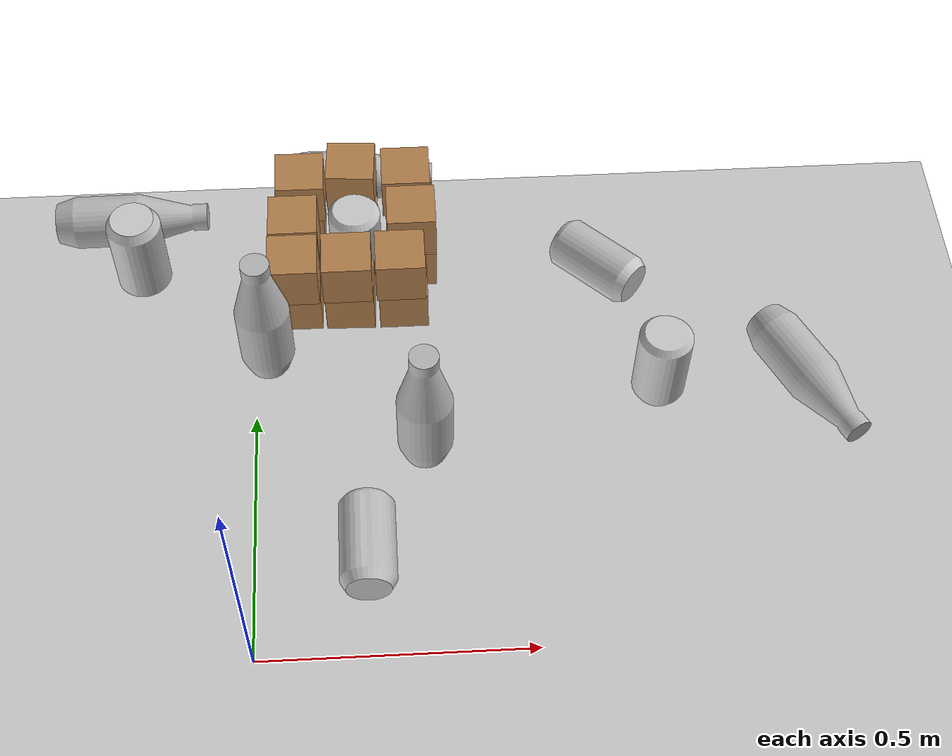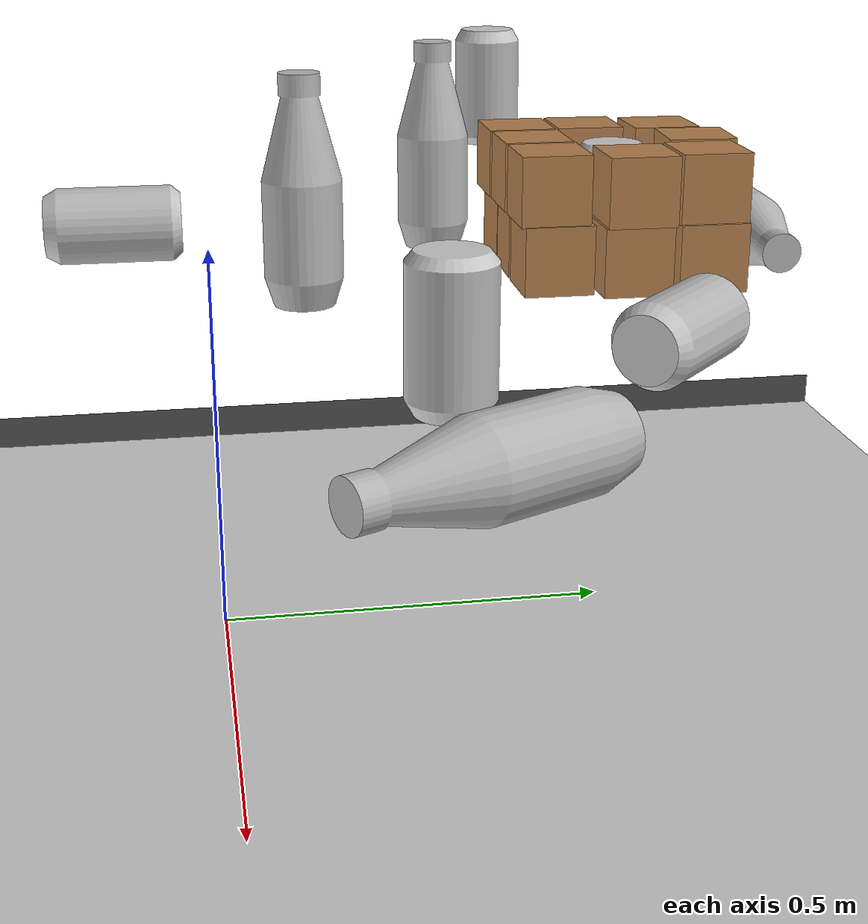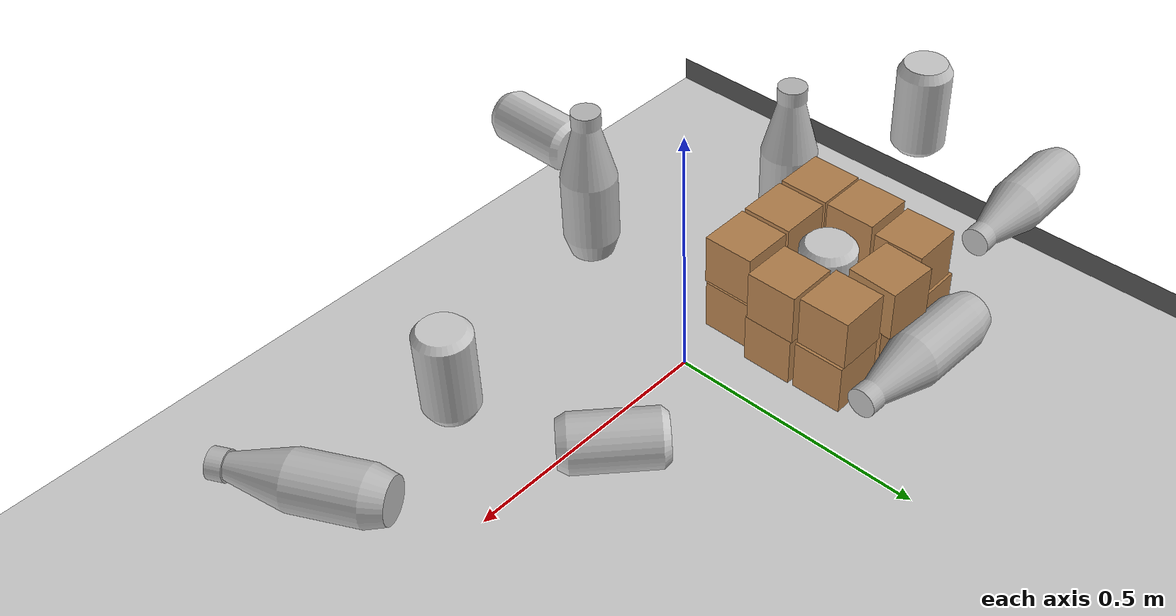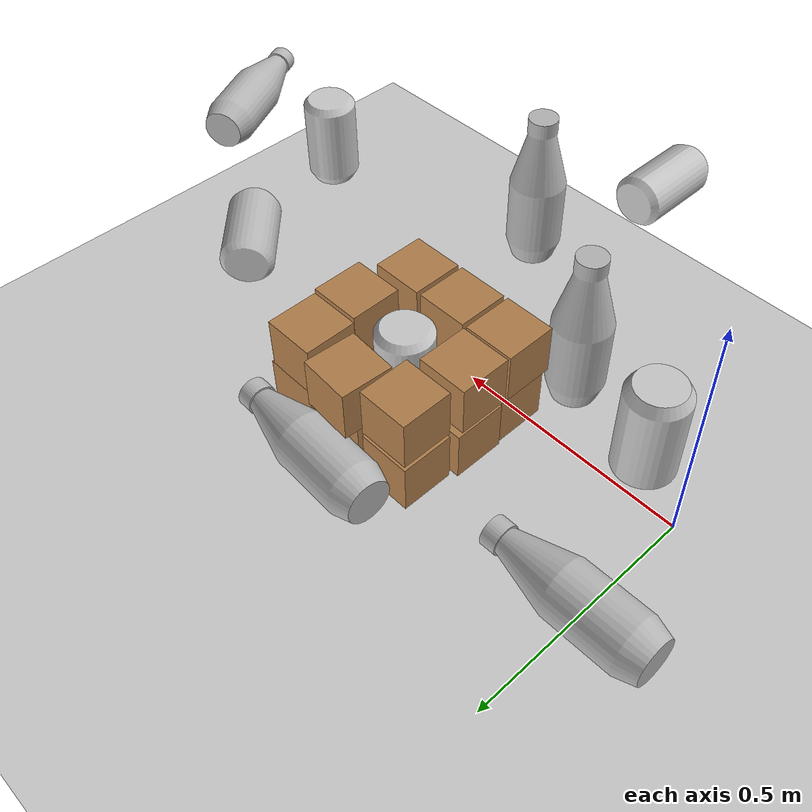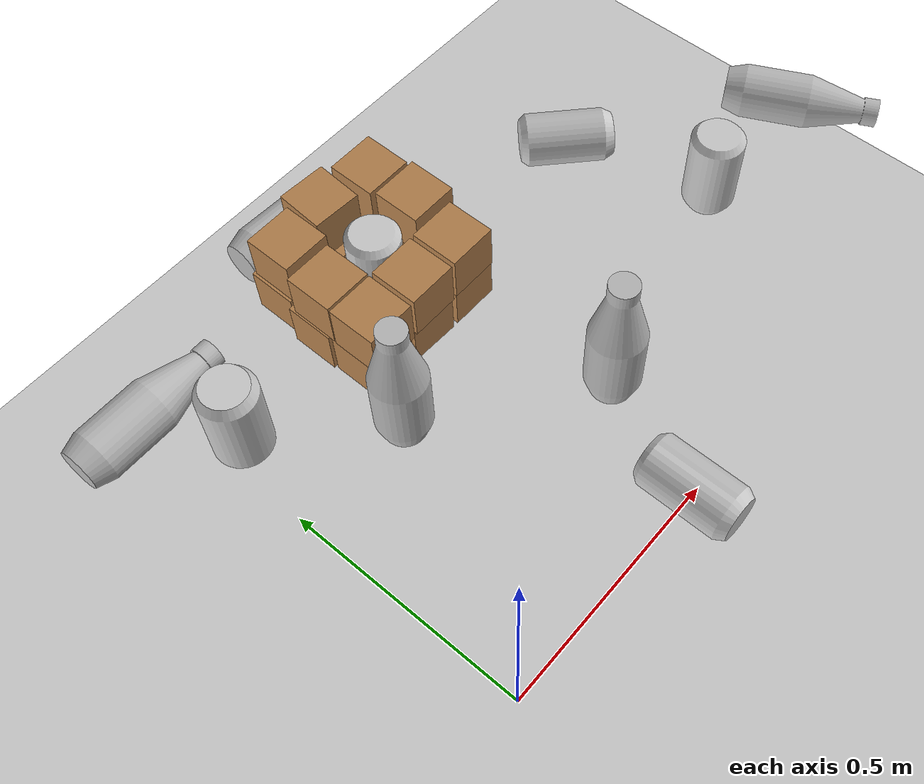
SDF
<sdf version="1.6">
 <world name="default">
  <model name="ground_plane">
   <static>1</static>
   <link name="link">
    <collision name="collision">
     <geometry><plane><normal>0 0 1</normal><size>100 100</size></plane></geometry>
     <surface><friction><ode><mu>100</mu><mu2>50</mu2></ode></friction></surface>
    </collision>
    <visual name="visual">
     <cast_shadows>0</cast_shadows>
     <geometry><plane><normal>0 0 1</normal><size>100 100</size></plane></geometry>
     <material>
      <script><uri>file://media/materials/scripts/gazebo.material</uri><name>Gazebo/Grey</name></script>
     </material>
    </visual>
   </link>
  </model>
  <model name="asphalt_plane">
   <static>1</static>
   <link name="link">
    <collision name="collision"><geometry><box><size>20 20 0.1</size></box></geometry></collision>
    <visual name="visual">
     <cast_shadows>0</cast_shadows>
     <geometry><box><size>20 20 0.1</size></box></geometry>
     <material>
      <script>
       <uri>model://asphalt_plane/materials/scripts</uri>
       <uri>model://asphalt_plane/materials/textures</uri>
       <name>vrc/asphalt</name>
      </script>
     </material>
    </visual>
   </link>
   <pose>-86.5622 -4.74054 0 0 -0 0</pose>
  </model>
  <model name="Green Can">
   <static>0</static>
   <link name="link">
    <inertial>
     <mass>0.3</mass>
     <inertia>
      <ixx>0.00055575</ixx>
      <ixy>0</ixy>
      <ixz>0</ixz>
      <iyy>0.00055575</iyy>
      <iyz>0</iyz>
      <izz>0.0001755</izz>
     </inertia>
    </inertial>
    <collision name="collision">
     <geometry><mesh><uri>model://greenCan/meshes/canGreen.dae</uri><scale>0.04 0.04 0.04</scale></mesh></geometry>
     <surface>
      <friction><ode><mu>3</mu><mu2>3</mu2></ode></friction>
      <contact><ode><kp>1e+07</kp><kd>1</kd><min_depth>0.001</min_depth><max_vel>0.5</max_vel></ode></contact>
     </surface>
    </collision>
    <visual name="visual">
     <geometry><mesh><uri>model://greenCan/meshes/canGreen.dae</uri><scale>0.04 0.04 0.04</scale></mesh></geometry>
    </visual>
   </link>
   <pose>-0.106804 0.363716 0.674668 0.002462 -0.003683 1.34015</pose>
  </model>
  <model name="Red Bottle">
   <static>0</static>
   <link name="link">
    <inertial>
     <mass>0.3</mass>
     <inertia>
      <ixx>0.00055575</ixx>
      <ixy>0</ixy>
      <ixz>0</ixz>
      <iyy>0.00055575</iyy>
      <iyz>0</iyz>
      <izz>0.0001755</izz>
     </inertia>
    </inertial>
    <collision name="collision">
     <geometry>
      <mesh><uri>model://redBottle/meshes/bottleRedBlue.dae</uri><scale>0.041 0.041 0.041</scale></mesh>
     </geometry>
     <surface>
      <friction><ode><mu>3</mu><mu2>3</mu2></ode></friction>
      <contact><ode><kp>1e+07</kp><kd>1</kd><min_depth>0.001</min_depth><max_vel>0.5</max_vel></ode></contact>
     </surface>
    </collision>
    <visual name="visual">
     <geometry>
      <mesh><uri>model://redBottle/meshes/bottleRedBlue.dae</uri><scale>0.041 0.041 0.041</scale></mesh>
     </geometry>
    </visual>
   </link>
   <pose>0.221411 0.600409 0.555976 1.57087 -0.421233 1.53192</pose>
  </model>
  <model name="Red Can">
   <static>0</static>
   <link name="link">
    <inertial>
     <mass>0.3</mass>
     <inertia>
      <ixx>0.00055575</ixx>
      <ixy>0</ixy>
      <ixz>0</ixz>
      <iyy>0.00055575</iyy>
      <iyz>0</iyz>
      <izz>0.0001755</izz>
     </inertia>
    </inertial>
    <collision name="collision">
     <geometry><mesh><uri>model://redCan/meshes/canRed.dae</uri><scale>0.04 0.04 0.04</scale></mesh></geometry>
     <surface>
      <friction><ode><mu>3</mu><mu2>3</mu2></ode></friction>
      <contact><ode><kp>1e+07</kp><kd>1</kd><min_depth>0.001</min_depth><max_vel>0.5</max_vel></ode></contact>
     </surface>
    </collision>
    <visual name="visual">
     <geometry><mesh><uri>model://redCan/meshes/canRed.dae</uri><scale>0.04 0.04 0.04</scale></mesh></geometry>
    </visual>
   </link>
   <pose>0.592503 0.403142 0.554807 -1.57079 0.098163 -2.32733</pose>
  </model>
  <model name="Red Can_clone">
   <static>0</static>
   <link name="link">
    <inertial>
     <mass>0.3</mass>
     <inertia>
      <ixx>0.00055575</ixx>
      <ixy>0</ixy>
      <ixz>0</ixz>
      <iyy>0.00055575</iyy>
      <iyz>0</iyz>
      <izz>0.0001755</izz>
     </inertia>
    </inertial>
    <collision name="collision">
     <geometry><mesh><uri>model://redCan/meshes/canRed.dae</uri><scale>0.04 0.04 0.04</scale></mesh></geometry>
     <surface>
      <friction><ode><mu>3</mu><mu2>3</mu2></ode></friction>
      <contact><ode><kp>1e+07</kp><kd>1</kd><min_depth>0.001</min_depth><max_vel>0.5</max_vel></ode></contact>
     </surface>
    </collision>
    <visual name="visual">
     <geometry><mesh><uri>model://redCan/meshes/canRed.dae</uri><scale>0.04 0.04 0.04</scale></mesh></geometry>
    </visual>
   </link>
   <pose>0.213417 0.441408 0.585732 3.13974 -0.001346 -3.01735</pose>
  </model>
  <model name="Red Bottle_clone">
   <static>0</static>
   <link name="link">
    <inertial>
     <mass>0.3</mass>
     <inertia>
      <ixx>0.00055575</ixx>
      <ixy>0</ixy>
      <ixz>0</ixz>
      <iyy>0.00055575</iyy>
      <iyz>0</iyz>
      <izz>0.0001755</izz>
     </inertia>
    </inertial>
    <collision name="collision">
     <geometry>
      <mesh><uri>model://redBottle/meshes/bottleRedBlue.dae</uri><scale>0.041 0.041 0.041</scale></mesh>
     </geometry>
     <surface>
      <friction><ode><mu>3</mu><mu2>3</mu2></ode></friction>
      <contact><ode><kp>1e+07</kp><kd>1</kd><min_depth>0.001</min_depth><max_vel>0.5</max_vel></ode></contact>
     </surface>
    </collision>
    <visual name="visual">
     <geometry>
      <mesh><uri>model://redBottle/meshes/bottleRedBlue.dae</uri><scale>0.041 0.041 0.041</scale></mesh>
     </geometry>
    </visual>
   </link>
   <pose>0.889082 0.168505 0.555797 1.5706 -0.099076 0.459908</pose>
  </model>
  <model name="Green Can_clone">
   <static>0</static>
   <link name="link">
    <inertial>
     <mass>0.3</mass>
     <inertia>
      <ixx>0.00055575</ixx>
      <ixy>0</ixy>
      <ixz>0</ixz>
      <iyy>0.00055575</iyy>
      <iyz>0</iyz>
      <izz>0.0001755</izz>
     </inertia>
    </inertial>
    <collision name="collision">
     <geometry><mesh><uri>model://greenCan/meshes/canGreen.dae</uri><scale>0.04 0.04 0.04</scale></mesh></geometry>
     <surface>
      <friction><ode><mu>3</mu><mu2>3</mu2></ode></friction>
      <contact><ode><kp>1e+07</kp><kd>1</kd><min_depth>0.001</min_depth><max_vel>0.5</max_vel></ode></contact>
     </surface>
    </collision>
    <visual name="visual">
     <geometry><mesh><uri>model://greenCan/meshes/canGreen.dae</uri><scale>0.04 0.04 0.04</scale></mesh></geometry>
    </visual>
   </link>
   <pose>0.218312 -0.101977 0.585732 -3.14159 -1.57079 -1.57079</pose>
  </model>
  <model name="Blue Bottle_clone">
   <static>0</static>
   <link name="link">
    <inertial>
     <mass>0.3</mass>
     <inertia>
      <ixx>0.00055575</ixx>
      <ixy>0</ixy>
      <ixz>0</ixz>
      <iyy>0.00055575</iyy>
      <iyz>0</iyz>
      <izz>0.0001755</izz>
     </inertia>
    </inertial>
    <collision name="collision">
     <geometry>
      <mesh><uri>model://blueBottle/meshes/bottleBlue.dae</uri><scale>0.041 0.041 0.041</scale></mesh>
     </geometry>
     <surface>
      <friction><ode><mu>3</mu><mu2>3</mu2></ode></friction>
      <contact><ode><kp>1e+07</kp><kd>1</kd><min_depth>0.001</min_depth><max_vel>0.5</max_vel></ode></contact>
     </surface>
    </collision>
    <visual name="visual">
     <geometry>
      <mesh><uri>model://blueBottle/meshes/bottleBlue.dae</uri><scale>0.041 0.041 0.041</scale></mesh>
     </geometry>
    </visual>
   </link>
   <pose>0.073556 0.263917 0.633855 0.001639 -0.001191 0.003992</pose>
  </model>
  <model name="Yellow Can">
   <static>0</static>
   <link name="link">
    <inertial>
     <mass>0.3</mass>
     <inertia>
      <ixx>0.00055575</ixx>
      <ixy>0</ixy>
      <ixz>0</ixz>
      <iyy>0.00055575</iyy>
      <iyz>0</iyz>
      <izz>0.0001755</izz>
     </inertia>
    </inertial>
    <collision name="collision">
     <geometry>
      <mesh><uri>model://yellowCan/meshes/canYellow.dae</uri><scale>0.04 0.04 0.04</scale></mesh>
     </geometry>
     <surface>
      <friction><ode><mu>3</mu><mu2>3</mu2></ode></friction>
      <contact><ode><kp>1e+07</kp><kd>1</kd><min_depth>0.001</min_depth><max_vel>0.5</max_vel></ode></contact>
     </surface>
    </collision>
    <visual name="visual">
     <geometry>
      <mesh><uri>model://yellowCan/meshes/canYellow.dae</uri><scale>0.04 0.04 0.04</scale></mesh>
     </geometry>
    </visual>
   </link>
   <pose>0.663181 0.182102 0.585669 3.1382 -0.002786 -1.30143</pose>
  </model>
  <model name="Yellow Bottle">
   <static>0</static>
   <link name="link">
    <inertial>
     <mass>0.3</mass>
     <inertia>
      <ixx>0.00055575</ixx>
      <ixy>0</ixy>
      <ixz>0</ixz>
      <iyy>0.00055575</iyy>
      <iyz>0</iyz>
      <izz>0.0001755</izz>
     </inertia>
    </inertial>
    <collision name="collision">
     <geometry>
      <mesh><uri>model://yellowBottle/meshes/bottleYellowBlue.dae</uri><scale>0.041 0.041 0.041</scale></mesh>
     </geometry>
     <surface>
      <friction><ode><mu>3</mu><mu2>3</mu2></ode></friction>
      <contact><ode><kp>1e+07</kp><kd>1</kd><min_depth>0.001</min_depth><max_vel>0.5</max_vel></ode></contact>
     </surface>
    </collision>
    <visual name="visual">
     <geometry>
      <mesh><uri>model://yellowBottle/meshes/bottleYellowBlue.dae</uri><scale>0.041 0.041 0.041</scale></mesh>
     </geometry>
    </visual>
   </link>
   <pose>-0.142983 0.526395 0.555797 1.569 1.47165 1.57799</pose>
  </model>
  <model name="Yellow Bottle_clone_1">
   <static>0</static>
   <link name="link">
    <inertial>
     <mass>0.3</mass>
     <inertia>
      <ixx>0.00055575</ixx>
      <ixy>0</ixy>
      <ixz>0</ixz>
      <iyy>0.00055575</iyy>
      <iyz>0</iyz>
      <izz>0.0001755</izz>
     </inertia>
    </inertial>
    <collision name="collision">
     <geometry>
      <mesh><uri>model://yellowBottle/meshes/bottleYellowBlue.dae</uri><scale>0.041 0.041 0.041</scale></mesh>
     </geometry>
     <surface>
      <friction><ode><mu>3</mu><mu2>3</mu2></ode></friction>
      <contact><ode><kp>1e+07</kp><kd>1</kd><min_depth>0.001</min_depth><max_vel>0.5</max_vel></ode></contact>
     </surface>
    </collision>
    <visual name="visual">
     <geometry>
      <mesh><uri>model://yellowBottle/meshes/bottleYellowBlue.dae</uri><scale>0.041 0.041 0.041</scale></mesh>
     </geometry>
    </visual>
   </link>
   <pose>0.306442 0.090912 0.633899 0.000223 1e-06 -0.005744</pose>
  </model>
  <model name="wood_cube_7_5cm_clone_0_clone_0">
   <link name="link">
    <pose>0 0 0.0375 0 -0 0</pose>
    <inertial>
     <mass>0.2249</mass>
     <inertia>
      <ixx>0.000210844</ixx>
      <ixy>0</ixy>
      <ixz>0</ixz>
      <iyy>0.000210844</iyy>
      <iyz>0</iyz>
      <izz>0.000210844</izz>
     </inertia>
    </inertial>
    <collision name="collision">
     <geometry><box><size>0.075 0.075 0.075</size></box></geometry>
     <surface>
      <contact>
       <poissons_ratio>0.347</poissons_ratio>
       <elastic_modulus>8.8e+09</elastic_modulus>
       <ode><kp>100000</kp><kd>100</kd><max_vel>100</max_vel><min_depth>0.001</min_depth></ode>
      </contact>
      <friction>
       <torsional>
        <coefficient>1</coefficient>
        <use_patch_radius>0</use_patch_radius>
        <surface_radius>0.01</surface_radius>
       </torsional>
      </friction>
     </surface>
    </collision>
    <visual name="visual">
     <geometry><box><size>0.075 0.075 0.075</size></box></geometry>
     <material>
      <script><uri>file://media/materials/scripts/gazebo.material</uri><name>Gazebo/Wood</name></script>
     </material>
    </visual>
   </link>
   <pose>0.164585 0.361638 0.551489 1.25383 1.57077 1.22111</pose>
  </model>
  <model name="wood_cube_7_5cm_clone_0_clone_1">
   <link name="link">
    <pose>0 0 0.0375 0 -0 0</pose>
    <inertial>
     <mass>0.2249</mass>
     <inertia>
      <ixx>0.000210844</ixx>
      <ixy>0</ixy>
      <ixz>0</ixz>
      <iyy>0.000210844</iyy>
      <iyz>0</iyz>
      <izz>0.000210844</izz>
     </inertia>
    </inertial>
    <collision name="collision">
     <geometry><box><size>0.075 0.075 0.075</size></box></geometry>
     <surface>
      <contact>
       <poissons_ratio>0.347</poissons_ratio>
       <elastic_modulus>8.8e+09</elastic_modulus>
       <ode><kp>100000</kp><kd>100</kd><max_vel>100</max_vel><min_depth>0.001</min_depth></ode>
      </contact>
      <friction>
       <torsional>
        <coefficient>1</coefficient>
        <use_patch_radius>0</use_patch_radius>
        <surface_radius>0.01</surface_radius>
       </torsional>
      </friction>
     </surface>
    </collision>
    <visual name="visual">
     <geometry><box><size>0.075 0.075 0.075</size></box></geometry>
     <material>
      <script><uri>file://media/materials/scripts/gazebo.material</uri><name>Gazebo/Wood</name></script>
     </material>
    </visual>
   </link>
   <pose>0.246565 0.359124 0.551489 0.930441 1.57078 0.930501</pose>
  </model>
  <model name="wood_cube_7_5cm_clone_0_clone_2">
   <link name="link">
    <pose>0 0 0.0375 0 -0 0</pose>
    <inertial>
     <mass>0.2249</mass>
     <inertia>
      <ixx>0.000210844</ixx>
      <ixy>0</ixy>
      <ixz>0</ixz>
      <iyy>0.000210844</iyy>
      <iyz>0</iyz>
      <izz>0.000210844</izz>
     </inertia>
    </inertial>
    <collision name="collision">
     <geometry><box><size>0.075 0.075 0.075</size></box></geometry>
     <surface>
      <contact>
       <poissons_ratio>0.347</poissons_ratio>
       <elastic_modulus>8.8e+09</elastic_modulus>
       <ode><kp>100000</kp><kd>100</kd><max_vel>100</max_vel><min_depth>0.001</min_depth></ode>
      </contact>
      <friction>
       <torsional>
        <coefficient>1</coefficient>
        <use_patch_radius>0</use_patch_radius>
        <surface_radius>0.01</surface_radius>
       </torsional>
      </friction>
     </surface>
    </collision>
    <visual name="visual">
     <geometry><box><size>0.075 0.075 0.075</size></box></geometry>
     <material>
      <script><uri>file://media/materials/scripts/gazebo.material</uri><name>Gazebo/Wood</name></script>
     </material>
    </visual>
   </link>
   <pose>0.082357 0.362287 0.551487 1.4705 1.57072 1.47056</pose>
  </model>
  <model name="wood_cube_7_5cm_clone_0_clone_3">
   <link name="link">
    <pose>0 0 0.0375 0 -0 0</pose>
    <inertial>
     <mass>0.2249</mass>
     <inertia>
      <ixx>0.000210844</ixx>
      <ixy>0</ixy>
      <ixz>0</ixz>
      <iyy>0.000210844</iyy>
      <iyz>0</iyz>
      <izz>0.000210844</izz>
     </inertia>
    </inertial>
    <collision name="collision">
     <geometry><box><size>0.075 0.075 0.075</size></box></geometry>
     <surface>
      <contact>
       <poissons_ratio>0.347</poissons_ratio>
       <elastic_modulus>8.8e+09</elastic_modulus>
       <ode><kp>100000</kp><kd>100</kd><max_vel>100</max_vel><min_depth>0.001</min_depth></ode>
      </contact>
      <friction>
       <torsional>
        <coefficient>1</coefficient>
        <use_patch_radius>0</use_patch_radius>
        <surface_radius>0.01</surface_radius>
       </torsional>
      </friction>
     </surface>
    </collision>
    <visual name="visual">
     <geometry><box><size>0.075 0.075 0.075</size></box></geometry>
     <material>
      <script><uri>file://media/materials/scripts/gazebo.material</uri><name>Gazebo/Wood</name></script>
     </material>
    </visual>
   </link>
   <pose>0.079254 0.44104 0.551491 -1.65505 1.57068 -1.65497</pose>
  </model>
  <model name="wood_cube_7_5cm_clone_0_clone_4">
   <link name="link">
    <pose>0 0 0.0375 0 -0 0</pose>
    <inertial>
     <mass>0.2249</mass>
     <inertia>
      <ixx>0.000210844</ixx>
      <ixy>0</ixy>
      <ixz>0</ixz>
      <iyy>0.000210844</iyy>
      <iyz>0</iyz>
      <izz>0.000210844</izz>
     </inertia>
    </inertial>
    <collision name="collision">
     <geometry><box><size>0.075 0.075 0.075</size></box></geometry>
     <surface>
      <contact>
       <poissons_ratio>0.347</poissons_ratio>
       <elastic_modulus>8.8e+09</elastic_modulus>
       <ode><kp>100000</kp><kd>100</kd><max_vel>100</max_vel><min_depth>0.001</min_depth></ode>
      </contact>
      <friction>
       <torsional>
        <coefficient>1</coefficient>
        <use_patch_radius>0</use_patch_radius>
        <surface_radius>0.01</surface_radius>
       </torsional>
      </friction>
     </surface>
    </collision>
    <visual name="visual">
     <geometry><box><size>0.075 0.075 0.075</size></box></geometry>
     <material>
      <script><uri>file://media/materials/scripts/gazebo.material</uri><name>Gazebo/Wood</name></script>
     </material>
    </visual>
   </link>
   <pose>0.088143 0.522552 0.55149 2.41345 1.57077 2.41351</pose>
  </model>
  <model name="wood_cube_7_5cm_clone_0_clone_5">
   <link name="link">
    <pose>0 0 0.0375 0 -0 0</pose>
    <inertial>
     <mass>0.2249</mass>
     <inertia>
      <ixx>0.000210844</ixx>
      <ixy>0</ixy>
      <ixz>0</ixz>
      <iyy>0.000210844</iyy>
      <iyz>0</iyz>
      <izz>0.000210844</izz>
     </inertia>
    </inertial>
    <collision name="collision">
     <geometry><box><size>0.075 0.075 0.075</size></box></geometry>
     <surface>
      <contact>
       <poissons_ratio>0.347</poissons_ratio>
       <elastic_modulus>8.8e+09</elastic_modulus>
       <ode><kp>100000</kp><kd>100</kd><max_vel>100</max_vel><min_depth>0.001</min_depth></ode>
      </contact>
      <friction>
       <torsional>
        <coefficient>1</coefficient>
        <use_patch_radius>0</use_patch_radius>
        <surface_radius>0.01</surface_radius>
       </torsional>
      </friction>
     </surface>
    </collision>
    <visual name="visual">
     <geometry><box><size>0.075 0.075 0.075</size></box></geometry>
     <material>
      <script><uri>file://media/materials/scripts/gazebo.material</uri><name>Gazebo/Wood</name></script>
     </material>
    </visual>
   </link>
   <pose>0.263141 0.440989 0.551489 -1.71297 1.57079 -1.71291</pose>
  </model>
  <model name="wood_cube_7_5cm_clone_0_clone_6">
   <link name="link">
    <pose>0 0 0.0375 0 -0 0</pose>
    <inertial>
     <mass>0.2249</mass>
     <inertia>
      <ixx>0.000210844</ixx>
      <ixy>0</ixy>
      <ixz>0</ixz>
      <iyy>0.000210844</iyy>
      <iyz>0</iyz>
      <izz>0.000210844</izz>
     </inertia>
    </inertial>
    <collision name="collision">
     <geometry><box><size>0.075 0.075 0.075</size></box></geometry>
     <surface>
      <contact>
       <poissons_ratio>0.347</poissons_ratio>
       <elastic_modulus>8.8e+09</elastic_modulus>
       <ode><kp>100000</kp><kd>100</kd><max_vel>100</max_vel><min_depth>0.001</min_depth></ode>
      </contact>
      <friction>
       <torsional>
        <coefficient>1</coefficient>
        <use_patch_radius>0</use_patch_radius>
        <surface_radius>0.01</surface_radius>
       </torsional>
      </friction>
     </surface>
    </collision>
    <visual name="visual">
     <geometry><box><size>0.075 0.075 0.075</size></box></geometry>
     <material>
      <script><uri>file://media/materials/scripts/gazebo.material</uri><name>Gazebo/Wood</name></script>
     </material>
    </visual>
   </link>
   <pose>0.174066 0.521035 0.551489 -1.45808 1.57074 -1.458</pose>
  </model>
  <model name="wood_cube_7_5cm_clone_0_clone_7">
   <link name="link">
    <pose>0 0 0.0375 0 -0 0</pose>
    <inertial>
     <mass>0.2249</mass>
     <inertia>
      <ixx>0.000210844</ixx>
      <ixy>0</ixy>
      <ixz>0</ixz>
      <iyy>0.000210844</iyy>
      <iyz>0</iyz>
      <izz>0.000210844</izz>
     </inertia>
    </inertial>
    <collision name="collision">
     <geometry><box><size>0.075 0.075 0.075</size></box></geometry>
     <surface>
      <contact>
       <poissons_ratio>0.347</poissons_ratio>
       <elastic_modulus>8.8e+09</elastic_modulus>
       <ode><kp>100000</kp><kd>100</kd><max_vel>100</max_vel><min_depth>0.001</min_depth></ode>
      </contact>
      <friction>
       <torsional>
        <coefficient>1</coefficient>
        <use_patch_radius>0</use_patch_radius>
        <surface_radius>0.01</surface_radius>
       </torsional>
      </friction>
     </surface>
    </collision>
    <visual name="visual">
     <geometry><box><size>0.075 0.075 0.075</size></box></geometry>
     <material>
      <script><uri>file://media/materials/scripts/gazebo.material</uri><name>Gazebo/Wood</name></script>
     </material>
    </visual>
   </link>
   <pose>0.262172 0.523249 0.551488 -0.000121 1.57078 -6.1e-05</pose>
  </model>
  <model name="wood_cube_7_5cm_clone_0_clone_6_clone">
   <link name="link">
    <pose>0 0 0.0375 0 -0 0</pose>
    <inertial>
     <mass>0.2249</mass>
     <inertia>
      <ixx>0.000210844</ixx>
      <ixy>0</ixy>
      <ixz>0</ixz>
      <iyy>0.000210844</iyy>
      <iyz>0</iyz>
      <izz>0.000210844</izz>
     </inertia>
    </inertial>
    <collision name="collision">
     <geometry><box><size>0.075 0.075 0.075</size></box></geometry>
     <surface>
      <contact>
       <poissons_ratio>0.347</poissons_ratio>
       <elastic_modulus>8.8e+09</elastic_modulus>
       <ode><kp>100000</kp><kd>100</kd><max_vel>100</max_vel><min_depth>0.001</min_depth></ode>
      </contact>
      <friction>
       <torsional>
        <coefficient>1</coefficient>
        <use_patch_radius>0</use_patch_radius>
        <surface_radius>0.01</surface_radius>
       </torsional>
      </friction>
     </surface>
    </collision>
    <visual name="visual">
     <geometry><box><size>0.075 0.075 0.075</size></box></geometry>
     <material>
      <script><uri>file://media/materials/scripts/gazebo.material</uri><name>Gazebo/Wood</name></script>
     </material>
    </visual>
   </link>
   <pose>0.257758 0.523249 0.625484 -1.57078 -0 -1.57074</pose>
  </model>
  <model name="wood_cube_7_5cm_clone_0_clone_6_clone_clone">
   <link name="link">
    <pose>0 0 0.0375 0 -0 0</pose>
    <inertial>
     <mass>0.2249</mass>
     <inertia>
      <ixx>0.000210844</ixx>
      <ixy>0</ixy>
      <ixz>0</ixz>
      <iyy>0.000210844</iyy>
      <iyz>0</iyz>
      <izz>0.000210844</izz>
     </inertia>
    </inertial>
    <collision name="collision">
     <geometry><box><size>0.075 0.075 0.075</size></box></geometry>
     <surface>
      <contact>
       <poissons_ratio>0.347</poissons_ratio>
       <elastic_modulus>8.8e+09</elastic_modulus>
       <ode><kp>100000</kp><kd>100</kd><max_vel>100</max_vel><min_depth>0.001</min_depth></ode>
      </contact>
      <friction>
       <torsional>
        <coefficient>1</coefficient>
        <use_patch_radius>0</use_patch_radius>
        <surface_radius>0.01</surface_radius>
       </torsional>
      </friction>
     </surface>
    </collision>
    <visual name="visual">
     <geometry><box><size>0.075 0.075 0.075</size></box></geometry>
     <material>
      <script><uri>file://media/materials/scripts/gazebo.material</uri><name>Gazebo/Wood</name></script>
     </material>
    </visual>
   </link>
   <pose>0.172456 0.539506 0.625484 -1.57079 -7.5e-05 -1.6323</pose>
  </model>
  <model name="wood_cube_7_5cm_clone_0_clone_6_clone_clone_0">
   <link name="link">
    <pose>0 0 0.0375 0 -0 0</pose>
    <inertial>
     <mass>0.2249</mass>
     <inertia>
      <ixx>0.000210844</ixx>
      <ixy>0</ixy>
      <ixz>0</ixz>
      <iyy>0.000210844</iyy>
      <iyz>0</iyz>
      <izz>0.000210844</izz>
     </inertia>
    </inertial>
    <collision name="collision">
     <geometry><box><size>0.075 0.075 0.075</size></box></geometry>
     <surface>
      <contact>
       <poissons_ratio>0.347</poissons_ratio>
       <elastic_modulus>8.8e+09</elastic_modulus>
       <ode><kp>100000</kp><kd>100</kd><max_vel>100</max_vel><min_depth>0.001</min_depth></ode>
      </contact>
      <friction>
       <torsional>
        <coefficient>1</coefficient>
        <use_patch_radius>0</use_patch_radius>
        <surface_radius>0.01</surface_radius>
       </torsional>
      </friction>
     </surface>
    </collision>
    <visual name="visual">
     <geometry><box><size>0.075 0.075 0.075</size></box></geometry>
     <material>
      <script><uri>file://media/materials/scripts/gazebo.material</uri><name>Gazebo/Wood</name></script>
     </material>
    </visual>
   </link>
   <pose>0.092399 0.518758 0.625486 -1.57082 1.8e-05 -1.57074</pose>
  </model>
  <model name="wood_cube_7_5cm_clone_0_clone_6_clone_clone_1">
   <link name="link">
    <pose>0 0 0.0375 0 -0 0</pose>
    <inertial>
     <mass>0.2249</mass>
     <inertia>
      <ixx>0.000210844</ixx>
      <ixy>0</ixy>
      <ixz>0</ixz>
      <iyy>0.000210844</iyy>
      <iyz>0</iyz>
      <izz>0.000210844</izz>
     </inertia>
    </inertial>
    <collision name="collision">
     <geometry><box><size>0.075 0.075 0.075</size></box></geometry>
     <surface>
      <contact>
       <poissons_ratio>0.347</poissons_ratio>
       <elastic_modulus>8.8e+09</elastic_modulus>
       <ode><kp>100000</kp><kd>100</kd><max_vel>100</max_vel><min_depth>0.001</min_depth></ode>
      </contact>
      <friction>
       <torsional>
        <coefficient>1</coefficient>
        <use_patch_radius>0</use_patch_radius>
        <surface_radius>0.01</surface_radius>
       </torsional>
      </friction>
     </surface>
    </collision>
    <visual name="visual">
     <geometry><box><size>0.075 0.075 0.075</size></box></geometry>
     <material>
      <script><uri>file://media/materials/scripts/gazebo.material</uri><name>Gazebo/Wood</name></script>
     </material>
    </visual>
   </link>
   <pose>0.263502 0.443516 0.625485 -1.5708 -1.2e-05 -1.57074</pose>
  </model>
  <model name="wood_cube_7_5cm_clone_0_clone_6_clone_clone_2">
   <link name="link">
    <pose>0 0 0.0375 0 -0 0</pose>
    <inertial>
     <mass>0.2249</mass>
     <inertia>
      <ixx>0.000210844</ixx>
      <ixy>0</ixy>
      <ixz>0</ixz>
      <iyy>0.000210844</iyy>
      <iyz>0</iyz>
      <izz>0.000210844</izz>
     </inertia>
    </inertial>
    <collision name="collision">
     <geometry><box><size>0.075 0.075 0.075</size></box></geometry>
     <surface>
      <contact>
       <poissons_ratio>0.347</poissons_ratio>
       <elastic_modulus>8.8e+09</elastic_modulus>
       <ode><kp>100000</kp><kd>100</kd><max_vel>100</max_vel><min_depth>0.001</min_depth></ode>
      </contact>
      <friction>
       <torsional>
        <coefficient>1</coefficient>
        <use_patch_radius>0</use_patch_radius>
        <surface_radius>0.01</surface_radius>
       </torsional>
      </friction>
     </surface>
    </collision>
    <visual name="visual">
     <geometry><box><size>0.075 0.075 0.075</size></box></geometry>
     <material>
      <script><uri>file://media/materials/scripts/gazebo.material</uri><name>Gazebo/Wood</name></script>
     </material>
    </visual>
   </link>
   <pose>0.243429 0.354913 0.625484 -1.57078 2e-05 -1.57074</pose>
  </model>
  <model name="wood_cube_7_5cm_clone_0_clone_6_clone_clone_3">
   <link name="link">
    <pose>0 0 0.0375 0 -0 0</pose>
    <inertial>
     <mass>0.2249</mass>
     <inertia>
      <ixx>0.000210844</ixx>
      <ixy>0</ixy>
      <ixz>0</ixz>
      <iyy>0.000210844</iyy>
      <iyz>0</iyz>
      <izz>0.000210844</izz>
     </inertia>
    </inertial>
    <collision name="collision">
     <geometry><box><size>0.075 0.075 0.075</size></box></geometry>
     <surface>
      <contact>
       <poissons_ratio>0.347</poissons_ratio>
       <elastic_modulus>8.8e+09</elastic_modulus>
       <ode><kp>100000</kp><kd>100</kd><max_vel>100</max_vel><min_depth>0.001</min_depth></ode>
      </contact>
      <friction>
       <torsional>
        <coefficient>1</coefficient>
        <use_patch_radius>0</use_patch_radius>
        <surface_radius>0.01</surface_radius>
       </torsional>
      </friction>
     </surface>
    </collision>
    <visual name="visual">
     <geometry><box><size>0.075 0.075 0.075</size></box></geometry>
     <material>
      <script><uri>file://media/materials/scripts/gazebo.material</uri><name>Gazebo/Wood</name></script>
     </material>
    </visual>
   </link>
   <pose>0.162298 0.354195 0.625485 -1.57079 3e-05 -1.57077</pose>
  </model>
  <model name="wood_cube_7_5cm_clone_0_clone_6_clone_clone_4">
   <link name="link">
    <pose>0 0 0.0375 0 -0 0</pose>
    <inertial>
     <mass>0.2249</mass>
     <inertia>
      <ixx>0.000210844</ixx>
      <ixy>0</ixy>
      <ixz>0</ixz>
      <iyy>0.000210844</iyy>
      <iyz>0</iyz>
      <izz>0.000210844</izz>
     </inertia>
    </inertial>
    <collision name="collision">
     <geometry><box><size>0.075 0.075 0.075</size></box></geometry>
     <surface>
      <contact>
       <poissons_ratio>0.347</poissons_ratio>
       <elastic_modulus>8.8e+09</elastic_modulus>
       <ode><kp>100000</kp><kd>100</kd><max_vel>100</max_vel><min_depth>0.001</min_depth></ode>
      </contact>
      <friction>
       <torsional>
        <coefficient>1</coefficient>
        <use_patch_radius>0</use_patch_radius>
        <surface_radius>0.01</surface_radius>
       </torsional>
      </friction>
     </surface>
    </collision>
    <visual name="visual">
     <geometry><box><size>0.075 0.075 0.075</size></box></geometry>
     <material>
      <script><uri>file://media/materials/scripts/gazebo.material</uri><name>Gazebo/Wood</name></script>
     </material>
    </visual>
   </link>
   <pose>0.081291 0.353497 0.625483 -1.57079 7.9e-05 -1.57073</pose>
  </model>
  <model name="wood_cube_7_5cm_clone_0_clone_6_clone_clone_5">
   <link name="link">
    <pose>0 0 0.0375 0 -0 0</pose>
    <inertial>
     <mass>0.2249</mass>
     <inertia>
      <ixx>0.000210844</ixx>
      <ixy>0</ixy>
      <ixz>0</ixz>
      <iyy>0.000210844</iyy>
      <iyz>0</iyz>
      <izz>0.000210844</izz>
     </inertia>
    </inertial>
    <collision name="collision">
     <geometry><box><size>0.075 0.075 0.075</size></box></geometry>
     <surface>
      <contact>
       <poissons_ratio>0.347</poissons_ratio>
       <elastic_modulus>8.8e+09</elastic_modulus>
       <ode><kp>100000</kp><kd>100</kd><max_vel>100</max_vel><min_depth>0.001</min_depth></ode>
      </contact>
      <friction>
       <torsional>
        <coefficient>1</coefficient>
        <use_patch_radius>0</use_patch_radius>
        <surface_radius>0.01</surface_radius>
       </torsional>
      </friction>
     </surface>
    </collision>
    <visual name="visual">
     <geometry><box><size>0.075 0.075 0.075</size></box></geometry>
     <material>
      <script><uri>file://media/materials/scripts/gazebo.material</uri><name>Gazebo/Wood</name></script>
     </material>
    </visual>
   </link>
   <pose>0.082069 0.431881 0.625558 -1.57081 -0.001934 -1.57057</pose>
  </model>
 </world>
</sdf>
